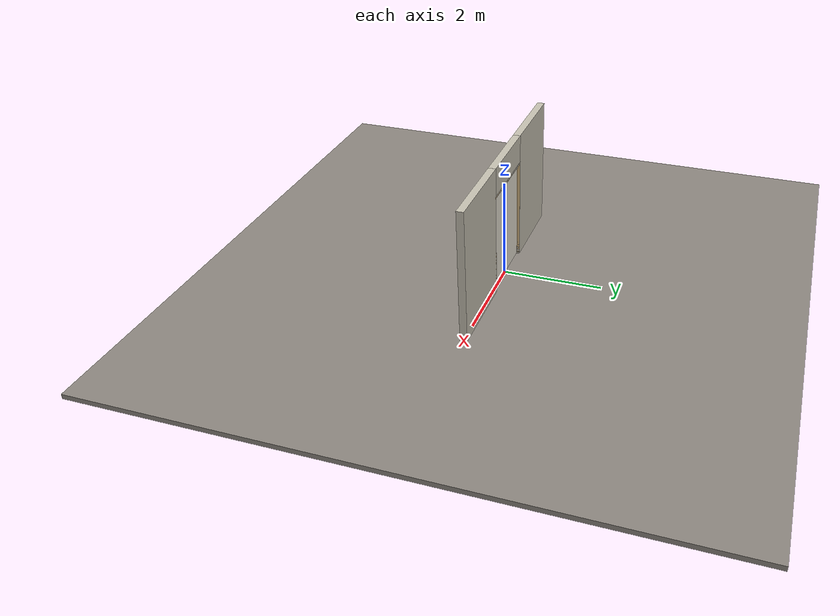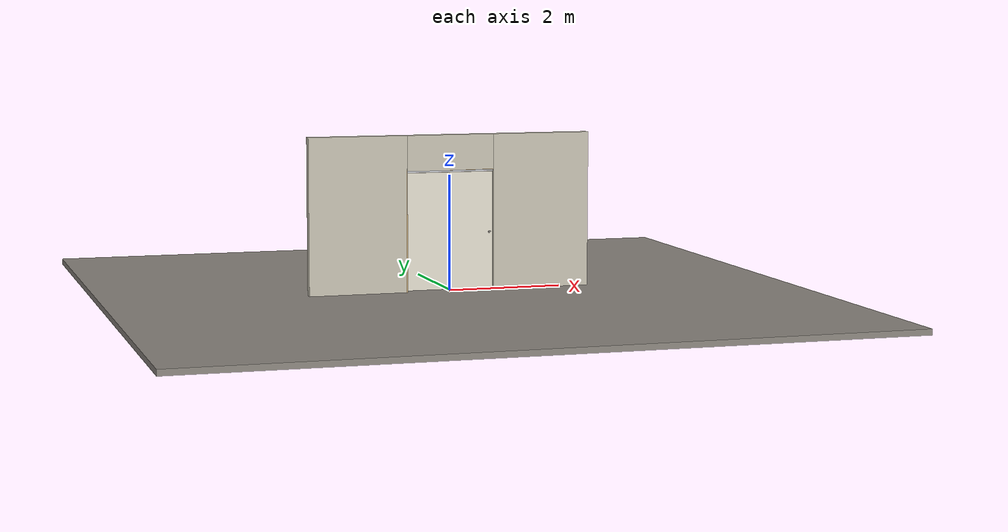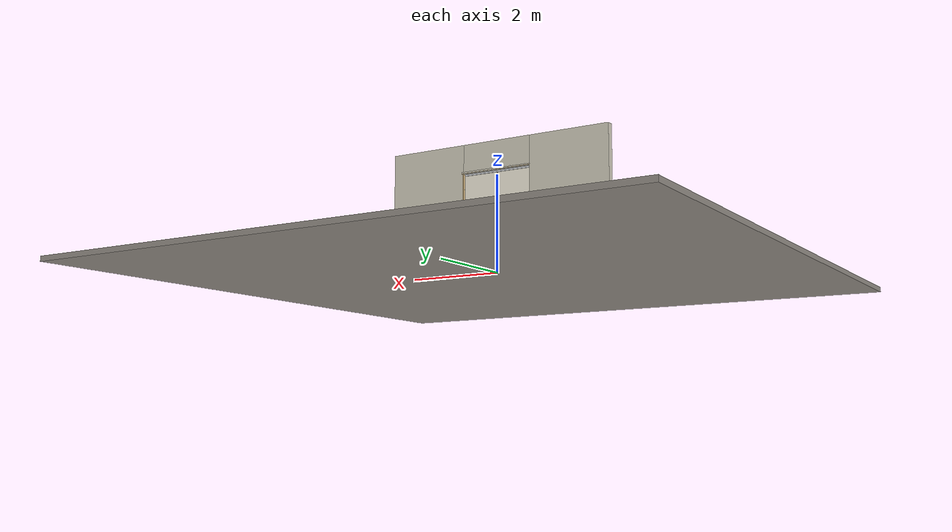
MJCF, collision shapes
<?xml version="1.0" ?>
<mujoco model="db0683_bifold_simple">
  <compiler angle="radian" meshdir="../../hardware" texturedir="../../textures" autolimits="true" inertiafromgeom="false"/>
  <option timestep="0.002" integrator="implicitfast" cone="elliptic" impratio="10" noslip_iterations="3">
    <flag multiccd="enable"/>
  </option>
  <size memory="16M"/>
  <default>
    <geom condim="4" solref="0.005 1" solimp="0.95 0.99 0.001"/>
    <joint solreflimit="0.005 1" solimplimit="0.95 0.99 0.001"/>
    <tendon solreflimit="0.005 1"/>
    <equality solref="0.002 1"/>
  </default>
  <visual>
    <headlight ambient="0.4 0.4 0.4" diffuse="0.7 0.7 0.7" specular="0.2 0.2 0.2"/>
    <quality shadowsize="4096"/>
    <map znear="0.01" zfar="60"/>
  </visual>
  <asset>
    <mesh name="knob_13f7a2a65f" file="knob_13f7a2a65f.obj"/>
    <material name="mat_floor" rgba="0.55 0.53 0.5 1" specular="0.2" shininess="0.15" reflectance="0"/>
    <material name="mat_wall" rgba="0.78 0.76 0.7 1" specular="0.2" shininess="0.1" reflectance="0"/>
    <material name="mat_frame" rgba="0.82 0.7 0.5 1" specular="0.2" shininess="0.45" reflectance="0"/>
    <material name="mat_track" rgba="0.8 0.81 0.83 1" specular="0.8" shininess="0.6" reflectance="0.4"/>
    <material name="mat_hinge" rgba="0.65 0.66 0.68 1" specular="0.74" shininess="0.5" reflectance="0.36"/>
    <material name="mat_panel_0_0" rgba="0.9 0.88 0.82 1" specular="0.2" shininess="0.55" reflectance="0"/>
    <material name="mat_panel_0_0_louver" rgba="0.765 0.748 0.697 1" specular="0.2" shininess="0.4" reflectance="0"/>
    <material name="mat_panel_0_1" rgba="0.9 0.88 0.82 1" specular="0.2" shininess="0.55" reflectance="0"/>
    <material name="mat_panel_0_1_louver" rgba="0.765 0.748 0.697 1" specular="0.2" shininess="0.4" reflectance="0"/>
    <material name="mat_op_nickel_satin" rgba="0.72 0.7 0.66 1" specular="0.8" shininess="0.65" reflectance="0.4"/>
    <texture name="skybox" type="skybox" builtin="gradient" rgb1="0.6 0.7 0.85" rgb2="0.9 0.92 0.95" width="256" height="256"/>
  </asset>
  <worldbody>
    <light name="sun" pos="1.5 -2.5 4" dir="-0.3 0.5 -0.8" directional="true" diffuse="0.8 0.8 0.8" specular="0.3 0.3 0.3" castshadow="true"/>
    <light name="fill" pos="-1.5 2.5 3" dir="0.3 -0.5 -0.7" directional="true" diffuse="0.35 0.35 0.4" castshadow="false"/>
    <camera name="robot_view" pos="0 -2.581563 1.766338" xyaxes="1 0 0 0 0.26963 0.962964" fovy="52"/>
    <camera name="far_view" pos="0 2.581563 1.766338" xyaxes="-1 0 0 0 -0.26963 0.962964" fovy="52"/>
    <camera name="iso" pos="1.961988 -2.168513 2.179388" xyaxes="0.741536 0.670913 0 -0.242917 0.268487 0.932151" fovy="46"/>
    <camera name="detail_handle" pos="0.8935 -0.8475 1.28" xyaxes="0.97561 0.219512 0 -0.070934 0.315262 0.94635" fovy="38"/>
    <geom name="floor" type="box" size="6 6 0.05" pos="0 0 -0.05" material="mat_floor" group="0" contype="1" conaffinity="1" friction="0.8 0.005 0.0001" density="2400"/>
    <geom name="wall_left" type="box" size="0.86525 0.0725 1.35" pos="-1.63475 0 1.35" material="mat_wall" group="0" contype="1" conaffinity="1" friction="0.6 0.005 0.0001" density="800"/>
    <geom name="wall_right" type="box" size="0.86525 0.0725 1.35" pos="1.63475 0 1.35" material="mat_wall" group="0" contype="1" conaffinity="1" friction="0.6 0.005 0.0001" density="800"/>
    <geom name="wall_header" type="box" size="0.7695 0.0725 0.3065" pos="0 0 2.3935" material="mat_wall" group="0" contype="1" conaffinity="1" friction="0.6 0.005 0.0001" density="800"/>
    <geom name="jamb_hinge" type="box" size="0.0095 0.0725 1.0435" pos="-0.779 0 1.0435" material="mat_frame" group="0" contype="1" conaffinity="1" friction="0.6 0.005 0.0001" density="400"/>
    <geom name="jamb_strike" type="box" size="0.0095 0.0725 1.0435" pos="0.779 0 1.0435" material="mat_frame" group="0" contype="1" conaffinity="1" friction="0.6 0.005 0.0001" density="400"/>
    <geom name="stud_strike" type="box" size="0.015 0.0725 1.0435" pos="0.8035 0 1.0435" material="mat_wall" group="0" contype="1" conaffinity="1" friction="0.6 0.005 0.0001" density="500"/>
    <geom name="jamb_head" type="box" size="0.8035 0.0725 0.0095" pos="0.015 0 2.0965" material="mat_frame" group="0" contype="1" conaffinity="1" friction="0.6 0.005 0.0001" density="400"/>
    <geom name="head_stud" type="box" size="0.8035 0.0725 0.015" pos="0.015 0 2.121" material="mat_wall" group="0" contype="1" conaffinity="1" friction="0.6 0.005 0.0001" density="500"/>
    <geom name="fold_track" type="box" size="0.7695 0.02 0.015" pos="0 0 2.072" material="mat_track" group="1" contype="0" conaffinity="0" density="2700"/>
    <site name="approach_point" pos="0 -1.5 0" quat="1 0 0 0" size="0.05" rgba="0.2 0.9 0.2 0.5" group="4"/>
    <site name="goal_point" pos="0 1.5 0" quat="1 0 0 0" size="0.05" rgba="0.2 0.9 0.2 0.5" group="4"/>
    <site name="door_plane_center" pos="0 0 1.0435" quat="1 0 0 0" size="0.02" rgba="0.2 0.9 0.2 0.5" group="4"/>
    <body name="panel_0_0" pos="-0.7695 0 0">
      <inertial pos="0.383386 0 1.038818" mass="11.876612" quat="0.500821 0.500821 0.499178 -0.499178" diaginertia="0.562264693 4.110414883 4.670260437"/>
      <joint name="panel_0_0_hinge" type="hinge" axis="0 0 -1" pos="0.035 0 0" limited="true" range="0 1.48353" damping="0.840751" frictionloss="11.149303" armature="0.02"/>
      <geom name="panel_0_0_slab" type="box" size="0.375645 0.0175 1.016" pos="0.384355 0 1.036" material="mat_panel_0_0" group="0" contype="1" conaffinity="1" friction="0.35 0.005 0.0001" density="1"/>
      <geom name="panel_0_0_pivot_pin" type="cylinder" size="0.008 0.0105" pos="0.035 0 2.0525" material="mat_hinge" group="1" contype="0" conaffinity="0" density="7850"/>
      <body name="panel_0_1" pos="0.762 0 0">
        <inertial pos="0.105461 0.010191 1.031609" mass="12.198501" quat="0.514173 0.479455 -0.519708 0.48544" diaginertia="0.751491567 3.619591477 4.370057609"/>
        <joint name="panel_0_1_hinge" type="hinge" axis="0 0 -1" pos="0 0.0175 0" limited="true" range="-3.141593 0" damping="0.2" frictionloss="0.1" armature="0.005"/>
        <geom name="panel_0_1_slab" type="box" size="0.3845 0.0175 1.016" pos="0.3865 0 1.036" material="mat_panel_0_1" group="0" contype="1" conaffinity="1" friction="0.35 0.005 0.0001" density="1"/>
        <geom name="panel_0_1_knuckle" type="cylinder" size="0.0045 1.006" pos="0 0.0175 1.036" material="mat_hinge" group="1" contype="0" conaffinity="0" density="7850"/>
        <geom name="panel_0_1_knob" type="mesh" mesh="knob_13f7a2a65f" pos="0.721 -0.0175 1" quat="0.707107 0.707107 0 0" material="mat_op_nickel_satin" group="1" contype="0" conaffinity="0" density="3000"/>
        <geom name="panel_0_1_knob_col" type="sphere" size="0.016" pos="0.721 -0.0475 1" material="mat_op_nickel_satin" group="0" contype="1" conaffinity="1" friction="0.6 0.005 0.0001" density="3000"/>
        <geom name="panel_0_1_knob_rose" type="cylinder" size="0.022 0.005" pos="0.721 -0.0225 1" quat="0.707107 -0.707107 0 0" material="mat_op_nickel_satin" group="1" contype="0" conaffinity="0" density="3000"/>
        <site name="panel_0_1_grip" pos="0.721 -0.0475 1" quat="1 0 0 0" size="0.012" rgba="0.2 0.9 0.2 0.5" group="4"/>
      </body>
    </body>
  </worldbody>
  <equality>
    <joint name="panel_0_1_couple" joint1="panel_0_1_hinge" joint2="panel_0_0_hinge" polycoef="0 -2 0 0 0" active="true"/>
  </equality>
  <sensor>
    <jointpos name="panel_0_0_hinge_pos" joint="panel_0_0_hinge"/>
    <jointvel name="panel_0_0_hinge_vel" joint="panel_0_0_hinge"/>
    <jointpos name="panel_0_1_hinge_pos" joint="panel_0_1_hinge"/>
    <jointvel name="panel_0_1_hinge_vel" joint="panel_0_1_hinge"/>
  </sensor>
</mujoco>
